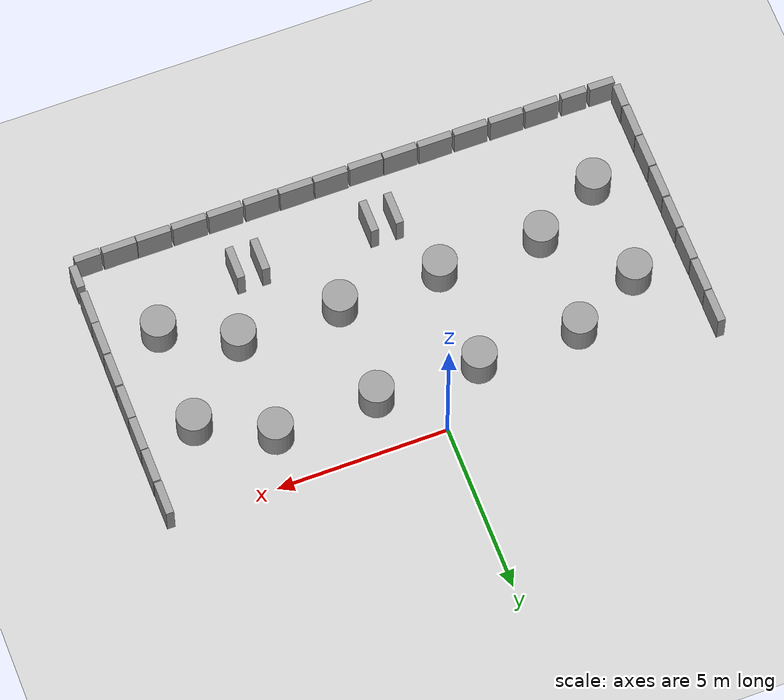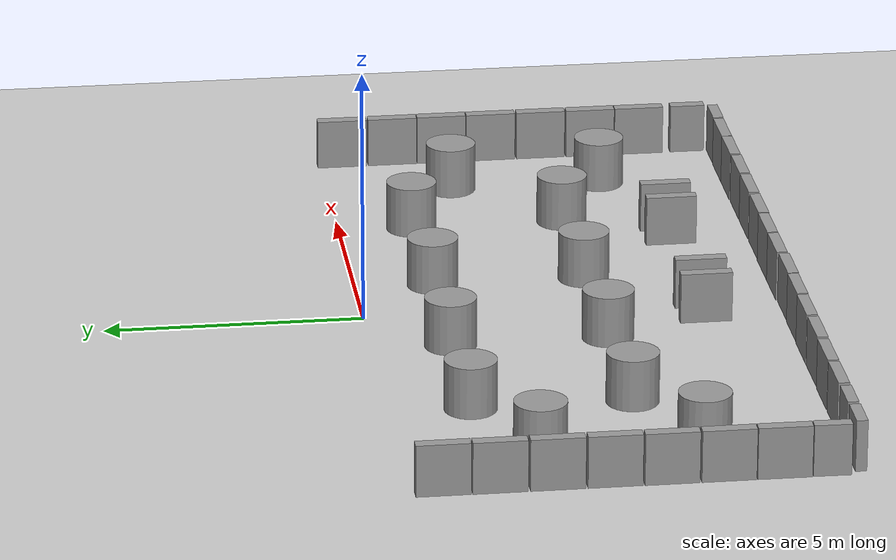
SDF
<sdf version="1.6">
 <world name="default">
  <model name="ground_plane">
   <static>1</static>
   <static>1</static>
   <link name="link">
    <collision name="collision">
     <geometry><plane><normal>0 0 1</normal><size>100 100</size></plane></geometry>
     <surface><friction><ode><mu>100</mu><mu2>50</mu2></ode></friction></surface>
    </collision>
    <visual name="visual">
     <cast_shadows>0</cast_shadows>
     <geometry><plane><normal>0 0 1</normal><size>100 100</size></plane></geometry>
     <material>
      <script><uri>file://media/materials/scripts/gazebo.material</uri><name>Gazebo/Grey</name></script>
     </material>
    </visual>
   </link>
  </model>
  <model name="unit_box_0_clone_7">
   <pose>8.11276 -0.44932 0.5 0 -0 0.000175</pose>
   <link name="link">
    <inertial>
     <mass>1</mass>
     <inertia>
      <ixx>0.166667</ixx>
      <ixy>0</ixy>
      <ixz>0</ixz>
      <iyy>0.166667</iyy>
      <iyz>0</iyz>
      <izz>0.166667</izz>
     </inertia>
    </inertial>
    <collision name="collision"><geometry><box><size>0.230819 1 1</size></box></geometry></collision>
    <visual name="visual">
     <geometry><box><size>0.230819 1 1</size></box></geometry>
     <material>
      <script><name>Gazebo/Grey</name><uri>file://media/materials/scripts/gazebo.material</uri></script>
     </material>
    </visual>
   </link>
  </model>
  <model name="unit_box_0_clone_8">
   <pose>8.11912 -1.48629 0.5 0 -0 0.000175</pose>
   <link name="link">
    <inertial>
     <mass>1</mass>
     <inertia>
      <ixx>0.166667</ixx>
      <ixy>0</ixy>
      <ixz>0</ixz>
      <iyy>0.166667</iyy>
      <iyz>0</iyz>
      <izz>0.166667</izz>
     </inertia>
    </inertial>
    <collision name="collision"><geometry><box><size>0.230819 1 1</size></box></geometry></collision>
    <visual name="visual">
     <geometry><box><size>0.230819 1 1</size></box></geometry>
     <material>
      <script><name>Gazebo/Grey</name><uri>file://media/materials/scripts/gazebo.material</uri></script>
     </material>
    </visual>
   </link>
  </model>
  <model name="unit_box_0_clone_9">
   <pose>8.12548 -2.5042 0.5 0 -0 0.000175</pose>
   <link name="link">
    <inertial>
     <mass>1</mass>
     <inertia>
      <ixx>0.166667</ixx>
      <ixy>0</ixy>
      <ixz>0</ixz>
      <iyy>0.166667</iyy>
      <iyz>0</iyz>
      <izz>0.166667</izz>
     </inertia>
    </inertial>
    <collision name="collision"><geometry><box><size>0.230819 1 1</size></box></geometry></collision>
    <visual name="visual">
     <geometry><box><size>0.230819 1 1</size></box></geometry>
     <material>
      <script><name>Gazebo/Grey</name><uri>file://media/materials/scripts/gazebo.material</uri></script>
     </material>
    </visual>
   </link>
  </model>
  <model name="unit_box_0_clone_10">
   <pose>8.12331 -3.52223 0.5 0 -0 0.000175</pose>
   <link name="link">
    <inertial>
     <mass>1</mass>
     <inertia>
      <ixx>0.166667</ixx>
      <ixy>0</ixy>
      <ixz>0</ixz>
      <iyy>0.166667</iyy>
      <iyz>0</iyz>
      <izz>0.166667</izz>
     </inertia>
    </inertial>
    <collision name="collision"><geometry><box><size>0.230819 1 1</size></box></geometry></collision>
    <visual name="visual">
     <geometry><box><size>0.230819 1 1</size></box></geometry>
     <material>
      <script><name>Gazebo/Grey</name><uri>file://media/materials/scripts/gazebo.material</uri></script>
     </material>
    </visual>
   </link>
  </model>
  <model name="unit_box_0_clone_11">
   <pose>8.1233 -4.56316 0.5 0 -0 0.000175</pose>
   <link name="link">
    <inertial>
     <mass>1</mass>
     <inertia>
      <ixx>0.166667</ixx>
      <ixy>0</ixy>
      <ixz>0</ixz>
      <iyy>0.166667</iyy>
      <iyz>0</iyz>
      <izz>0.166667</izz>
     </inertia>
    </inertial>
    <collision name="collision"><geometry><box><size>0.230819 1 1</size></box></geometry></collision>
    <visual name="visual">
     <geometry><box><size>0.230819 1 1</size></box></geometry>
     <material>
      <script><name>Gazebo/Grey</name><uri>file://media/materials/scripts/gazebo.material</uri></script>
     </material>
    </visual>
   </link>
  </model>
  <model name="unit_box_0_clone_12">
   <pose>8.11815 -5.59377 0.5 0 -0 0.000175</pose>
   <link name="link">
    <inertial>
     <mass>1</mass>
     <inertia>
      <ixx>0.166667</ixx>
      <ixy>0</ixy>
      <ixz>0</ixz>
      <iyy>0.166667</iyy>
      <iyz>0</iyz>
      <izz>0.166667</izz>
     </inertia>
    </inertial>
    <collision name="collision"><geometry><box><size>0.230819 1 1</size></box></geometry></collision>
    <visual name="visual">
     <geometry><box><size>0.230819 1 1</size></box></geometry>
     <material>
      <script><name>Gazebo/Grey</name><uri>file://media/materials/scripts/gazebo.material</uri></script>
     </material>
    </visual>
   </link>
  </model>
  <model name="unit_box_0_clone_13">
   <pose>8.11333 -6.60776 0.5 0 0 -0.005331</pose>
   <link name="link">
    <inertial>
     <mass>1</mass>
     <inertia>
      <ixx>0.166667</ixx>
      <ixy>0</ixy>
      <ixz>0</ixz>
      <iyy>0.166667</iyy>
      <iyz>0</iyz>
      <izz>0.166667</izz>
     </inertia>
    </inertial>
    <collision name="collision"><geometry><box><size>0.230819 1 1</size></box></geometry></collision>
    <visual name="visual">
     <geometry><box><size>0.230819 1 1</size></box></geometry>
     <material>
      <script><name>Gazebo/Grey</name><uri>file://media/materials/scripts/gazebo.material</uri></script>
     </material>
    </visual>
   </link>
  </model>
  <model name="unit_box_clone_15_clone_0">
   <pose>6.71207 -8.13128 0.499999 1e-06 -2e-06 0.000246</pose>
   <link name="link">
    <inertial>
     <mass>1</mass>
     <inertia>
      <ixx>0.166667</ixx>
      <ixy>0</ixy>
      <ixz>0</ixz>
      <iyy>0.166667</iyy>
      <iyz>0</iyz>
      <izz>0.166667</izz>
     </inertia>
    </inertial>
    <collision name="collision"><geometry><box><size>1 0.210541 1</size></box></geometry></collision>
    <visual name="visual">
     <geometry><box><size>1 0.210541 1</size></box></geometry>
     <material>
      <script><name>Gazebo/Grey</name><uri>file://media/materials/scripts/gazebo.material</uri></script>
     </material>
    </visual>
   </link>
  </model>
  <model name="unit_box_clone_15_clone_1">
   <pose>5.69715 -8.13127 0.499999 1e-06 -2e-06 0.000246</pose>
   <link name="link">
    <inertial>
     <mass>1</mass>
     <inertia>
      <ixx>0.166667</ixx>
      <ixy>0</ixy>
      <ixz>0</ixz>
      <iyy>0.166667</iyy>
      <iyz>0</iyz>
      <izz>0.166667</izz>
     </inertia>
    </inertial>
    <collision name="collision"><geometry><box><size>1 0.210541 1</size></box></geometry></collision>
    <visual name="visual">
     <geometry><box><size>1 0.210541 1</size></box></geometry>
     <material>
      <script><name>Gazebo/Grey</name><uri>file://media/materials/scripts/gazebo.material</uri></script>
     </material>
    </visual>
   </link>
  </model>
  <model name="unit_box_clone_15_clone_2">
   <pose>4.63881 -8.13745 0.499999 1e-06 -2e-06 0.000246</pose>
   <link name="link">
    <inertial>
     <mass>1</mass>
     <inertia>
      <ixx>0.166667</ixx>
      <ixy>0</ixy>
      <ixz>0</ixz>
      <iyy>0.166667</iyy>
      <iyz>0</iyz>
      <izz>0.166667</izz>
     </inertia>
    </inertial>
    <collision name="collision"><geometry><box><size>1 0.210541 1</size></box></geometry></collision>
    <visual name="visual">
     <geometry><box><size>1 0.210541 1</size></box></geometry>
     <material>
      <script><name>Gazebo/Grey</name><uri>file://media/materials/scripts/gazebo.material</uri></script>
     </material>
    </visual>
   </link>
  </model>
  <model name="unit_box_clone_15_clone_3">
   <pose>3.57975 -8.13745 0.499999 1e-06 -2e-06 0.000246</pose>
   <link name="link">
    <inertial>
     <mass>1</mass>
     <inertia>
      <ixx>0.166667</ixx>
      <ixy>0</ixy>
      <ixz>0</ixz>
      <iyy>0.166667</iyy>
      <iyz>0</iyz>
      <izz>0.166667</izz>
     </inertia>
    </inertial>
    <collision name="collision"><geometry><box><size>1 0.210541 1</size></box></geometry></collision>
    <visual name="visual">
     <geometry><box><size>1 0.210541 1</size></box></geometry>
     <material>
      <script><name>Gazebo/Grey</name><uri>file://media/materials/scripts/gazebo.material</uri></script>
     </material>
    </visual>
   </link>
  </model>
  <model name="unit_box_clone_15_clone_4">
   <pose>2.49815 -8.13744 0.499999 1e-06 -2e-06 0.000246</pose>
   <link name="link">
    <inertial>
     <mass>1</mass>
     <inertia>
      <ixx>0.166667</ixx>
      <ixy>0</ixy>
      <ixz>0</ixz>
      <iyy>0.166667</iyy>
      <iyz>0</iyz>
      <izz>0.166667</izz>
     </inertia>
    </inertial>
    <collision name="collision"><geometry><box><size>1 0.210541 1</size></box></geometry></collision>
    <visual name="visual">
     <geometry><box><size>1 0.210541 1</size></box></geometry>
     <material>
      <script><name>Gazebo/Grey</name><uri>file://media/materials/scripts/gazebo.material</uri></script>
     </material>
    </visual>
   </link>
  </model>
  <model name="unit_box_clone_15_clone_5">
   <pose>1.46162 -8.12617 0.499999 1e-06 -2e-06 0.000246</pose>
   <link name="link">
    <inertial>
     <mass>1</mass>
     <inertia>
      <ixx>0.166667</ixx>
      <ixy>0</ixy>
      <ixz>0</ixz>
      <iyy>0.166667</iyy>
      <iyz>0</iyz>
      <izz>0.166667</izz>
     </inertia>
    </inertial>
    <collision name="collision"><geometry><box><size>1 0.210541 1</size></box></geometry></collision>
    <visual name="visual">
     <geometry><box><size>1 0.210541 1</size></box></geometry>
     <material>
      <script><name>Gazebo/Grey</name><uri>file://media/materials/scripts/gazebo.material</uri></script>
     </material>
    </visual>
   </link>
  </model>
  <model name="unit_box_clone_15_clone_6">
   <pose>0.425086 -8.12616 0.499999 1e-06 -2e-06 0.000246</pose>
   <link name="link">
    <inertial>
     <mass>1</mass>
     <inertia>
      <ixx>0.166667</ixx>
      <ixy>0</ixy>
      <ixz>0</ixz>
      <iyy>0.166667</iyy>
      <iyz>0</iyz>
      <izz>0.166667</izz>
     </inertia>
    </inertial>
    <collision name="collision"><geometry><box><size>1 0.210541 1</size></box></geometry></collision>
    <visual name="visual">
     <geometry><box><size>1 0.210541 1</size></box></geometry>
     <material>
      <script><name>Gazebo/Grey</name><uri>file://media/materials/scripts/gazebo.material</uri></script>
     </material>
    </visual>
   </link>
  </model>
  <model name="unit_box_clone_15_clone_7">
   <pose>-0.633976 -8.14871 0.499999 1e-06 -2e-06 0.000246</pose>
   <link name="link">
    <inertial>
     <mass>1</mass>
     <inertia>
      <ixx>0.166667</ixx>
      <ixy>0</ixy>
      <ixz>0</ixz>
      <iyy>0.166667</iyy>
      <iyz>0</iyz>
      <izz>0.166667</izz>
     </inertia>
    </inertial>
    <collision name="collision"><geometry><box><size>1 0.210541 1</size></box></geometry></collision>
    <visual name="visual">
     <geometry><box><size>1 0.210541 1</size></box></geometry>
     <material>
      <script><name>Gazebo/Grey</name><uri>file://media/materials/scripts/gazebo.material</uri></script>
     </material>
    </visual>
   </link>
  </model>
  <model name="unit_box_clone_15_clone_8">
   <pose>-1.65923 -8.13743 0.499999 1e-06 -2e-06 0.000246</pose>
   <link name="link">
    <inertial>
     <mass>1</mass>
     <inertia>
      <ixx>0.166667</ixx>
      <ixy>0</ixy>
      <ixz>0</ixz>
      <iyy>0.166667</iyy>
      <iyz>0</iyz>
      <izz>0.166667</izz>
     </inertia>
    </inertial>
    <collision name="collision"><geometry><box><size>1 0.210541 1</size></box></geometry></collision>
    <visual name="visual">
     <geometry><box><size>1 0.210541 1</size></box></geometry>
     <material>
      <script><name>Gazebo/Grey</name><uri>file://media/materials/scripts/gazebo.material</uri></script>
     </material>
    </visual>
   </link>
  </model>
  <model name="unit_box_clone_15_clone_9">
   <pose>-2.70703 -8.12618 0.499999 1e-06 -2e-06 0.000246</pose>
   <link name="link">
    <inertial>
     <mass>1</mass>
     <inertia>
      <ixx>0.166667</ixx>
      <ixy>0</ixy>
      <ixz>0</ixz>
      <iyy>0.166667</iyy>
      <iyz>0</iyz>
      <izz>0.166667</izz>
     </inertia>
    </inertial>
    <collision name="collision"><geometry><box><size>1 0.210541 1</size></box></geometry></collision>
    <visual name="visual">
     <geometry><box><size>1 0.210541 1</size></box></geometry>
     <material>
      <script><name>Gazebo/Grey</name><uri>file://media/materials/scripts/gazebo.material</uri></script>
     </material>
    </visual>
   </link>
  </model>
  <model name="unit_box_clone_15_clone_10">
   <pose>-3.77736 -8.12617 0.499999 1e-06 -2e-06 0.000246</pose>
   <link name="link">
    <inertial>
     <mass>1</mass>
     <inertia>
      <ixx>0.166667</ixx>
      <ixy>0</ixy>
      <ixz>0</ixz>
      <iyy>0.166667</iyy>
      <iyz>0</iyz>
      <izz>0.166667</izz>
     </inertia>
    </inertial>
    <collision name="collision"><geometry><box><size>1 0.210541 1</size></box></geometry></collision>
    <visual name="visual">
     <geometry><box><size>1 0.210541 1</size></box></geometry>
     <material>
      <script><name>Gazebo/Grey</name><uri>file://media/materials/scripts/gazebo.material</uri></script>
     </material>
    </visual>
   </link>
  </model>
  <model name="unit_box_clone_15_clone_11">
   <pose>-4.85896 -8.11491 0.499999 1e-06 -2e-06 0.000246</pose>
   <link name="link">
    <inertial>
     <mass>1</mass>
     <inertia>
      <ixx>0.166667</ixx>
      <ixy>0</ixy>
      <ixz>0</ixz>
      <iyy>0.166667</iyy>
      <iyz>0</iyz>
      <izz>0.166667</izz>
     </inertia>
    </inertial>
    <collision name="collision"><geometry><box><size>1 0.210541 1</size></box></geometry></collision>
    <visual name="visual">
     <geometry><box><size>1 0.210541 1</size></box></geometry>
     <material>
      <script><name>Gazebo/Grey</name><uri>file://media/materials/scripts/gazebo.material</uri></script>
     </material>
    </visual>
   </link>
  </model>
  <model name="unit_box_clone_15_clone_12">
   <pose>-5.91802 -8.1149 0.499999 1e-06 -2e-06 0.000246</pose>
   <link name="link">
    <inertial>
     <mass>1</mass>
     <inertia>
      <ixx>0.166667</ixx>
      <ixy>0</ixy>
      <ixz>0</ixz>
      <iyy>0.166667</iyy>
      <iyz>0</iyz>
      <izz>0.166667</izz>
     </inertia>
    </inertial>
    <collision name="collision"><geometry><box><size>1 0.210541 1</size></box></geometry></collision>
    <visual name="visual">
     <geometry><box><size>1 0.210541 1</size></box></geometry>
     <material>
      <script><name>Gazebo/Grey</name><uri>file://media/materials/scripts/gazebo.material</uri></script>
     </material>
    </visual>
   </link>
  </model>
  <model name="unit_box_0_clone_4_clone_7">
   <pose>-8.12609 -0.518034 0.5 0 -0 0.000175</pose>
   <link name="link">
    <inertial>
     <mass>1</mass>
     <inertia>
      <ixx>0.166667</ixx>
      <ixy>0</ixy>
      <ixz>0</ixz>
      <iyy>0.166667</iyy>
      <iyz>0</iyz>
      <izz>0.166667</izz>
     </inertia>
    </inertial>
    <collision name="collision"><geometry><box><size>0.230819 1 1</size></box></geometry></collision>
    <visual name="visual">
     <geometry><box><size>0.230819 1 1</size></box></geometry>
     <material>
      <script><name>Gazebo/Grey</name><uri>file://media/materials/scripts/gazebo.material</uri></script>
     </material>
    </visual>
   </link>
  </model>
  <model name="unit_box_0_clone_4_clone_8">
   <pose>-8.13284 -1.54445 0.5 0 -0 0.000175</pose>
   <link name="link">
    <inertial>
     <mass>1</mass>
     <inertia>
      <ixx>0.166667</ixx>
      <ixy>0</ixy>
      <ixz>0</ixz>
      <iyy>0.166667</iyy>
      <iyz>0</iyz>
      <izz>0.166667</izz>
     </inertia>
    </inertial>
    <collision name="collision"><geometry><box><size>0.230819 1 1</size></box></geometry></collision>
    <visual name="visual">
     <geometry><box><size>0.230819 1 1</size></box></geometry>
     <material>
      <script><name>Gazebo/Grey</name><uri>file://media/materials/scripts/gazebo.material</uri></script>
     </material>
    </visual>
   </link>
  </model>
  <model name="unit_box_0_clone_4_clone_9">
   <pose>-8.13285 -2.58439 0.5 0 -0 0.000175</pose>
   <link name="link">
    <inertial>
     <mass>1</mass>
     <inertia>
      <ixx>0.166667</ixx>
      <ixy>0</ixy>
      <ixz>0</ixz>
      <iyy>0.166667</iyy>
      <iyz>0</iyz>
      <izz>0.166667</izz>
     </inertia>
    </inertial>
    <collision name="collision"><geometry><box><size>0.230819 1 1</size></box></geometry></collision>
    <visual name="visual">
     <geometry><box><size>0.230819 1 1</size></box></geometry>
     <material>
      <script><name>Gazebo/Grey</name><uri>file://media/materials/scripts/gazebo.material</uri></script>
     </material>
    </visual>
   </link>
  </model>
  <model name="unit_box_0_clone_4_clone_10">
   <pose>-8.13285 -3.62431 0.5 0 -0 0.000175</pose>
   <link name="link">
    <inertial>
     <mass>1</mass>
     <inertia>
      <ixx>0.166667</ixx>
      <ixy>0</ixy>
      <ixz>0</ixz>
      <iyy>0.166667</iyy>
      <iyz>0</iyz>
      <izz>0.166667</izz>
     </inertia>
    </inertial>
    <collision name="collision"><geometry><box><size>0.230819 1 1</size></box></geometry></collision>
    <visual name="visual">
     <geometry><box><size>0.230819 1 1</size></box></geometry>
     <material>
      <script><name>Gazebo/Grey</name><uri>file://media/materials/scripts/gazebo.material</uri></script>
     </material>
    </visual>
   </link>
  </model>
  <model name="unit_box_0_clone_4_clone_11">
   <pose>-8.1396 -4.65747 0.5 0 -0 0.000175</pose>
   <link name="link">
    <inertial>
     <mass>1</mass>
     <inertia>
      <ixx>0.166667</ixx>
      <ixy>0</ixy>
      <ixz>0</ixz>
      <iyy>0.166667</iyy>
      <iyz>0</iyz>
      <izz>0.166667</izz>
     </inertia>
    </inertial>
    <collision name="collision"><geometry><box><size>0.230819 1 1</size></box></geometry></collision>
    <visual name="visual">
     <geometry><box><size>0.230819 1 1</size></box></geometry>
     <material>
      <script><name>Gazebo/Grey</name><uri>file://media/materials/scripts/gazebo.material</uri></script>
     </material>
    </visual>
   </link>
  </model>
  <model name="unit_box_0_clone_4_clone_12">
   <pose>-8.1396 -5.69064 0.5 0 -0 0.000175</pose>
   <link name="link">
    <inertial>
     <mass>1</mass>
     <inertia>
      <ixx>0.166667</ixx>
      <ixy>0</ixy>
      <ixz>0</ixz>
      <iyy>0.166667</iyy>
      <iyz>0</iyz>
      <izz>0.166667</izz>
     </inertia>
    </inertial>
    <collision name="collision"><geometry><box><size>0.230819 1 1</size></box></geometry></collision>
    <visual name="visual">
     <geometry><box><size>0.230819 1 1</size></box></geometry>
     <material>
      <script><name>Gazebo/Grey</name><uri>file://media/materials/scripts/gazebo.material</uri></script>
     </material>
    </visual>
   </link>
  </model>
  <model name="unit_box_0_clone_4_clone_13">
   <pose>-8.14113 -6.70874 0.5 0 0 -0.008698</pose>
   <link name="link">
    <inertial>
     <mass>1</mass>
     <inertia>
      <ixx>0.166667</ixx>
      <ixy>0</ixy>
      <ixz>0</ixz>
      <iyy>0.166667</iyy>
      <iyz>0</iyz>
      <izz>0.166667</izz>
     </inertia>
    </inertial>
    <collision name="collision"><geometry><box><size>0.230819 1 1</size></box></geometry></collision>
    <visual name="visual">
     <geometry><box><size>0.230819 1 1</size></box></geometry>
     <material>
      <script><name>Gazebo/Grey</name><uri>file://media/materials/scripts/gazebo.material</uri></script>
     </material>
    </visual>
   </link>
  </model>
  <model name="unit_box_clone_11_clone_1_clone_0">
   <pose>-6.90881 -8.11956 0.499997 -2e-06 -8e-06 -0.003491</pose>
   <link name="link">
    <inertial>
     <mass>1</mass>
     <inertia>
      <ixx>0.166667</ixx>
      <ixy>0</ixy>
      <ixz>0</ixz>
      <iyy>0.166667</iyy>
      <iyz>0</iyz>
      <izz>0.166667</izz>
     </inertia>
    </inertial>
    <collision name="collision"><geometry><box><size>0.750223 0.210541 1</size></box></geometry></collision>
    <visual name="visual">
     <geometry><box><size>0.750223 0.210541 1</size></box></geometry>
     <material>
      <script><name>Gazebo/Grey</name><uri>file://media/materials/scripts/gazebo.material</uri></script>
     </material>
    </visual>
   </link>
  </model>
  <model name="unit_box_0_clone_4_clone_13_clone_clone">
   <pose>-8.13833 -7.57661 0.499998 7e-06 1e-06 -0.016612</pose>
   <link name="link">
    <inertial>
     <mass>1</mass>
     <inertia>
      <ixx>0.166667</ixx>
      <ixy>0</ixy>
      <ixz>0</ixz>
      <iyy>0.166667</iyy>
      <iyz>0</iyz>
      <izz>0.166667</izz>
     </inertia>
    </inertial>
    <collision name="collision"><geometry><box><size>0.230819 0.700336 1</size></box></geometry></collision>
    <visual name="visual">
     <geometry><box><size>0.230819 0.700336 1</size></box></geometry>
     <material>
      <script><name>Gazebo/Grey</name><uri>file://media/materials/scripts/gazebo.material</uri></script>
     </material>
    </visual>
   </link>
  </model>
  <model name="unit_box_clone_11_clone_1_clone_0_clone">
   <pose>-7.75475 -8.12201 0.499997 -2e-06 -8e-06 -0.006166</pose>
   <link name="link">
    <inertial>
     <mass>1</mass>
     <inertia>
      <ixx>0.166667</ixx>
      <ixy>0</ixy>
      <ixz>0</ixz>
      <iyy>0.166667</iyy>
      <iyz>0</iyz>
      <izz>0.166667</izz>
     </inertia>
    </inertial>
    <collision name="collision"><geometry><box><size>0.750223 0.210541 1</size></box></geometry></collision>
    <visual name="visual">
     <geometry><box><size>0.750223 0.210541 1</size></box></geometry>
     <material>
      <script><name>Gazebo/Grey</name><uri>file://media/materials/scripts/gazebo.material</uri></script>
     </material>
    </visual>
   </link>
  </model>
  <model name="unit_box_clone_11_clone_1_clone_2">
   <pose>7.64249 -8.13928 0.499997 2e-06 8e-06 0.001957</pose>
   <link name="link">
    <inertial>
     <mass>1</mass>
     <inertia>
      <ixx>0.166667</ixx>
      <ixy>0</ixy>
      <ixz>0</ixz>
      <iyy>0.166667</iyy>
      <iyz>0</iyz>
      <izz>0.166667</izz>
     </inertia>
    </inertial>
    <collision name="collision"><geometry><box><size>0.750223 0.210541 1</size></box></geometry></collision>
    <visual name="visual">
     <geometry><box><size>0.750223 0.210541 1</size></box></geometry>
     <material>
      <script><name>Gazebo/Grey</name><uri>file://media/materials/scripts/gazebo.material</uri></script>
     </material>
    </visual>
   </link>
  </model>
  <model name="unit_box_0_clone_4_clone_13_clone_clone_clone">
   <pose>8.11858 -7.62155 0.499997 -7e-06 2e-06 -0.005397</pose>
   <link name="link">
    <inertial>
     <mass>1</mass>
     <inertia>
      <ixx>0.166667</ixx>
      <ixy>0</ixy>
      <ixz>0</ixz>
      <iyy>0.166667</iyy>
      <iyz>0</iyz>
      <izz>0.166667</izz>
     </inertia>
    </inertial>
    <collision name="collision"><geometry><box><size>0.230819 0.700336 1</size></box></geometry></collision>
    <visual name="visual">
     <geometry><box><size>0.230819 0.700336 1</size></box></geometry>
     <material>
      <script><name>Gazebo/Grey</name><uri>file://media/materials/scripts/gazebo.material</uri></script>
     </material>
    </visual>
   </link>
  </model>
  <model name="unit_cylinder_clone_0_clone_clone_0">
   <pose>-1.50521 -1.49381 0.499994 -3e-06 -2e-06 0</pose>
   <link name="link">
    <inertial>
     <mass>1</mass>
     <inertia><ixx>0.145833</ixx><ixy>0</ixy><ixz>0</ixz><iyy>0.145833</iyy><iyz>0</iyz><izz>0.125</izz></inertia>
    </inertial>
    <collision name="collision">
     <geometry><cylinder><radius>0.5</radius><length>1</length></cylinder></geometry>
    </collision>
    <visual name="visual">
     <geometry><cylinder><radius>0.5</radius><length>1</length></cylinder></geometry>
     <material>
      <script><name>Gazebo/Grey</name><uri>file://media/materials/scripts/gazebo.material</uri></script>
     </material>
    </visual>
   </link>
  </model>
  <model name="unit_cylinder_clone_0_clone_clone_1">
   <pose>1.51857 -1.52195 0.499997 4e-06 2e-06 -0</pose>
   <link name="link">
    <inertial>
     <mass>1</mass>
     <inertia><ixx>0.145833</ixx><ixy>0</ixy><ixz>0</ixz><iyy>0.145833</iyy><iyz>0</iyz><izz>0.125</izz></inertia>
    </inertial>
    <collision name="collision">
     <geometry><cylinder><radius>0.5</radius><length>1</length></cylinder></geometry>
    </collision>
    <visual name="visual">
     <geometry><cylinder><radius>0.5</radius><length>1</length></cylinder></geometry>
     <material>
      <script><name>Gazebo/Grey</name><uri>file://media/materials/scripts/gazebo.material</uri></script>
     </material>
    </visual>
   </link>
  </model>
  <model name="unit_cylinder_clone_0_clone_clone_2">
   <pose>4.48607 -4.48949 0.499993 -3e-06 -1e-06 -0</pose>
   <link name="link">
    <inertial>
     <mass>1</mass>
     <inertia><ixx>0.145833</ixx><ixy>0</ixy><ixz>0</ixz><iyy>0.145833</iyy><iyz>0</iyz><izz>0.125</izz></inertia>
    </inertial>
    <collision name="collision">
     <geometry><cylinder><radius>0.5</radius><length>1</length></cylinder></geometry>
    </collision>
    <visual name="visual">
     <geometry><cylinder><radius>0.5</radius><length>1</length></cylinder></geometry>
     <material>
      <script><name>Gazebo/Grey</name><uri>file://media/materials/scripts/gazebo.material</uri></script>
     </material>
    </visual>
   </link>
  </model>
  <model name="unit_cylinder_clone_0_clone_clone_3">
   <pose>1.49042 -4.48947 0.499993 -3e-06 -1e-06 -0</pose>
   <link name="link">
    <inertial>
     <mass>1</mass>
     <inertia><ixx>0.145833</ixx><ixy>0</ixy><ixz>0</ixz><iyy>0.145833</iyy><iyz>0</iyz><izz>0.125</izz></inertia>
    </inertial>
    <collision name="collision">
     <geometry><cylinder><radius>0.5</radius><length>1</length></cylinder></geometry>
    </collision>
    <visual name="visual">
     <geometry><cylinder><radius>0.5</radius><length>1</length></cylinder></geometry>
     <material>
      <script><name>Gazebo/Grey</name><uri>file://media/materials/scripts/gazebo.material</uri></script>
     </material>
    </visual>
   </link>
  </model>
  <model name="unit_cylinder_clone_0_clone_clone_4">
   <pose>-1.49116 -4.51759 0.499998 3e-06 4e-06 -0</pose>
   <link name="link">
    <inertial>
     <mass>1</mass>
     <inertia><ixx>0.145833</ixx><ixy>0</ixy><ixz>0</ixz><iyy>0.145833</iyy><iyz>0</iyz><izz>0.125</izz></inertia>
    </inertial>
    <collision name="collision">
     <geometry><cylinder><radius>0.5</radius><length>1</length></cylinder></geometry>
    </collision>
    <visual name="visual">
     <geometry><cylinder><radius>0.5</radius><length>1</length></cylinder></geometry>
     <material>
      <script><name>Gazebo/Grey</name><uri>file://media/materials/scripts/gazebo.material</uri></script>
     </material>
    </visual>
   </link>
  </model>
  <model name="unit_cylinder_clone_0_clone_clone_5">
   <pose>-4.51963 -4.51548 0.499993 -3e-06 -1e-06 -0</pose>
   <link name="link">
    <inertial>
     <mass>1</mass>
     <inertia><ixx>0.145833</ixx><ixy>0</ixy><ixz>0</ixz><iyy>0.145833</iyy><iyz>0</iyz><izz>0.125</izz></inertia>
    </inertial>
    <collision name="collision">
     <geometry><cylinder><radius>0.5</radius><length>1</length></cylinder></geometry>
    </collision>
    <visual name="visual">
     <geometry><cylinder><radius>0.5</radius><length>1</length></cylinder></geometry>
     <material>
      <script><name>Gazebo/Grey</name><uri>file://media/materials/scripts/gazebo.material</uri></script>
     </material>
    </visual>
   </link>
  </model>
  <model name="unit_cylinder_clone_0_clone_clone_6">
   <pose>-4.48885 -1.49092 0.499994 -4e-06 -3e-06 -0</pose>
   <link name="link">
    <inertial>
     <mass>1</mass>
     <inertia><ixx>0.145833</ixx><ixy>0</ixy><ixz>0</ixz><iyy>0.145833</iyy><iyz>0</iyz><izz>0.125</izz></inertia>
    </inertial>
    <collision name="collision">
     <geometry><cylinder><radius>0.5</radius><length>1</length></cylinder></geometry>
    </collision>
    <visual name="visual">
     <geometry><cylinder><radius>0.5</radius><length>1</length></cylinder></geometry>
     <material>
      <script><name>Gazebo/Grey</name><uri>file://media/materials/scripts/gazebo.material</uri></script>
     </material>
    </visual>
   </link>
  </model>
  <model name="unit_cylinder_clone_0_clone_clone_13">
   <pose>4.50308 -1.46254 0.499993 -3e-06 -1e-06 -0</pose>
   <link name="link">
    <inertial>
     <mass>1</mass>
     <inertia><ixx>0.145833</ixx><ixy>0</ixy><ixz>0</ixz><iyy>0.145833</iyy><iyz>0</iyz><izz>0.125</izz></inertia>
    </inertial>
    <collision name="collision">
     <geometry><cylinder><radius>0.5</radius><length>1</length></cylinder></geometry>
    </collision>
    <visual name="visual">
     <geometry><cylinder><radius>0.5</radius><length>1</length></cylinder></geometry>
     <material>
      <script><name>Gazebo/Grey</name><uri>file://media/materials/scripts/gazebo.material</uri></script>
     </material>
    </visual>
   </link>
  </model>
  <model name="unit_cylinder_clone_0_clone_clone_17">
   <pose>-6.52804 -2.50431 0.499993 -3e-06 -1e-06 -0</pose>
   <link name="link">
    <inertial>
     <mass>1</mass>
     <inertia><ixx>0.145833</ixx><ixy>0</ixy><ixz>0</ixz><iyy>0.145833</iyy><iyz>0</iyz><izz>0.125</izz></inertia>
    </inertial>
    <collision name="collision">
     <geometry><cylinder><radius>0.5</radius><length>1</length></cylinder></geometry>
    </collision>
    <visual name="visual">
     <geometry><cylinder><radius>0.5</radius><length>1</length></cylinder></geometry>
     <material>
      <script><name>Gazebo/Grey</name><uri>file://media/materials/scripts/gazebo.material</uri></script>
     </material>
    </visual>
   </link>
  </model>
  <model name="unit_cylinder_clone_0_clone_clone_18">
   <pose>-6.50063 -5.53484 0.499992 -3e-06 3e-06 0</pose>
   <link name="link">
    <inertial>
     <mass>1</mass>
     <inertia><ixx>0.145833</ixx><ixy>0</ixy><ixz>0</ixz><iyy>0.145833</iyy><iyz>0</iyz><izz>0.125</izz></inertia>
    </inertial>
    <collision name="collision">
     <geometry><cylinder><radius>0.5</radius><length>1</length></cylinder></geometry>
    </collision>
    <visual name="visual">
     <geometry><cylinder><radius>0.5</radius><length>1</length></cylinder></geometry>
     <material>
      <script><name>Gazebo/Grey</name><uri>file://media/materials/scripts/gazebo.material</uri></script>
     </material>
    </visual>
   </link>
  </model>
  <model name="unit_cylinder_clone_0_clone_clone_22">
   <pose>6.51285 -2.50438 0.499992 -3e-06 4e-06 0</pose>
   <link name="link">
    <inertial>
     <mass>1</mass>
     <inertia><ixx>0.145833</ixx><ixy>0</ixy><ixz>0</ixz><iyy>0.145833</iyy><iyz>0</iyz><izz>0.125</izz></inertia>
    </inertial>
    <collision name="collision">
     <geometry><cylinder><radius>0.5</radius><length>1</length></cylinder></geometry>
    </collision>
    <visual name="visual">
     <geometry><cylinder><radius>0.5</radius><length>1</length></cylinder></geometry>
     <material>
      <script><name>Gazebo/Grey</name><uri>file://media/materials/scripts/gazebo.material</uri></script>
     </material>
    </visual>
   </link>
  </model>
  <model name="unit_cylinder_clone_0_clone_clone_23">
   <pose>6.4717 -5.53491 0.499998 3e-06 -4e-06 0</pose>
   <link name="link">
    <inertial>
     <mass>1</mass>
     <inertia><ixx>0.145833</ixx><ixy>0</ixy><ixz>0</ixz><iyy>0.145833</iyy><iyz>0</iyz><izz>0.125</izz></inertia>
    </inertial>
    <collision name="collision">
     <geometry><cylinder><radius>0.5</radius><length>1</length></cylinder></geometry>
    </collision>
    <visual name="visual">
     <geometry><cylinder><radius>0.5</radius><length>1</length></cylinder></geometry>
     <material>
      <script><name>Gazebo/Grey</name><uri>file://media/materials/scripts/gazebo.material</uri></script>
     </material>
    </visual>
   </link>
  </model>
  <model name="unit_box_0_clone_4_clone_12_clone">
   <pose>-0.865317 -6.50511 0.5 0 -0 0.000217</pose>
   <link name="link">
    <inertial>
     <mass>1</mass>
     <inertia>
      <ixx>0.166667</ixx>
      <ixy>0</ixy>
      <ixz>0</ixz>
      <iyy>0.166667</iyy>
      <iyz>0</iyz>
      <izz>0.166667</izz>
     </inertia>
    </inertial>
    <collision name="collision"><geometry><box><size>0.230819 1 1</size></box></geometry></collision>
    <visual name="visual">
     <geometry><box><size>0.230819 1 1</size></box></geometry>
     <material>
      <script><name>Gazebo/Grey</name><uri>file://media/materials/scripts/gazebo.material</uri></script>
     </material>
    </visual>
   </link>
  </model>
  <model name="unit_box_0_clone_4_clone_12_clone_0">
   <pose>-0.126846 -6.51932 0.5 1e-06 -1e-06 0.000207</pose>
   <link name="link">
    <inertial>
     <mass>1</mass>
     <inertia>
      <ixx>0.166667</ixx>
      <ixy>0</ixy>
      <ixz>0</ixz>
      <iyy>0.166667</iyy>
      <iyz>0</iyz>
      <izz>0.166667</izz>
     </inertia>
    </inertial>
    <collision name="collision"><geometry><box><size>0.230819 1 1</size></box></geometry></collision>
    <visual name="visual">
     <geometry><box><size>0.230819 1 1</size></box></geometry>
     <material>
      <script><name>Gazebo/Grey</name><uri>file://media/materials/scripts/gazebo.material</uri></script>
     </material>
    </visual>
   </link>
  </model>
  <model name="unit_box_0_clone_4_clone_12_clone_1">
   <pose>3.12527 -6.47673 0.5 0 -0 0.000197</pose>
   <link name="link">
    <inertial>
     <mass>1</mass>
     <inertia>
      <ixx>0.166667</ixx>
      <ixy>0</ixy>
      <ixz>0</ixz>
      <iyy>0.166667</iyy>
      <iyz>0</iyz>
      <izz>0.166667</izz>
     </inertia>
    </inertial>
    <collision name="collision"><geometry><box><size>0.230819 1 1</size></box></geometry></collision>
    <visual name="visual">
     <geometry><box><size>0.230819 1 1</size></box></geometry>
     <material>
      <script><name>Gazebo/Grey</name><uri>file://media/materials/scripts/gazebo.material</uri></script>
     </material>
    </visual>
   </link>
  </model>
  <model name="unit_box_0_clone_4_clone_12_clone_2">
   <pose>3.86374 -6.47673 0.5 0 -0 0.000207</pose>
   <link name="link">
    <inertial>
     <mass>1</mass>
     <inertia>
      <ixx>0.166667</ixx>
      <ixy>0</ixy>
      <ixz>0</ixz>
      <iyy>0.166667</iyy>
      <iyz>0</iyz>
      <izz>0.166667</izz>
     </inertia>
    </inertial>
    <collision name="collision"><geometry><box><size>0.230819 1 1</size></box></geometry></collision>
    <visual name="visual">
     <geometry><box><size>0.230819 1 1</size></box></geometry>
     <material>
      <script><name>Gazebo/Grey</name><uri>file://media/materials/scripts/gazebo.material</uri></script>
     </material>
    </visual>
   </link>
  </model>
 </world>
</sdf>
